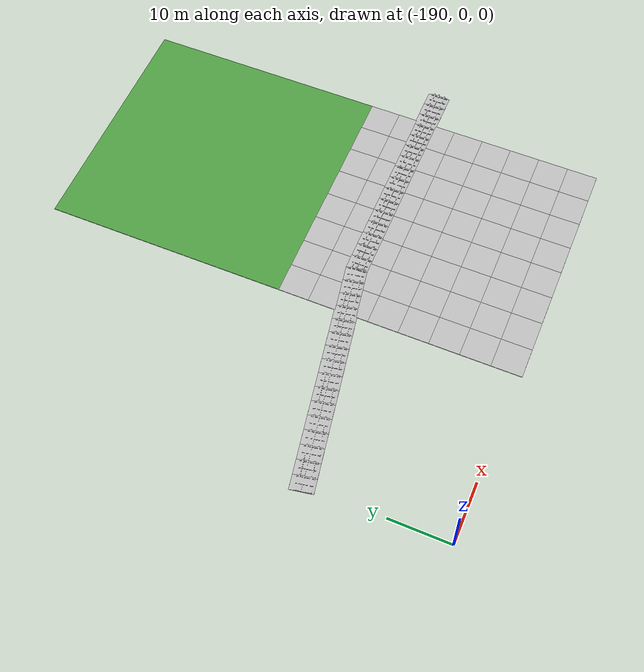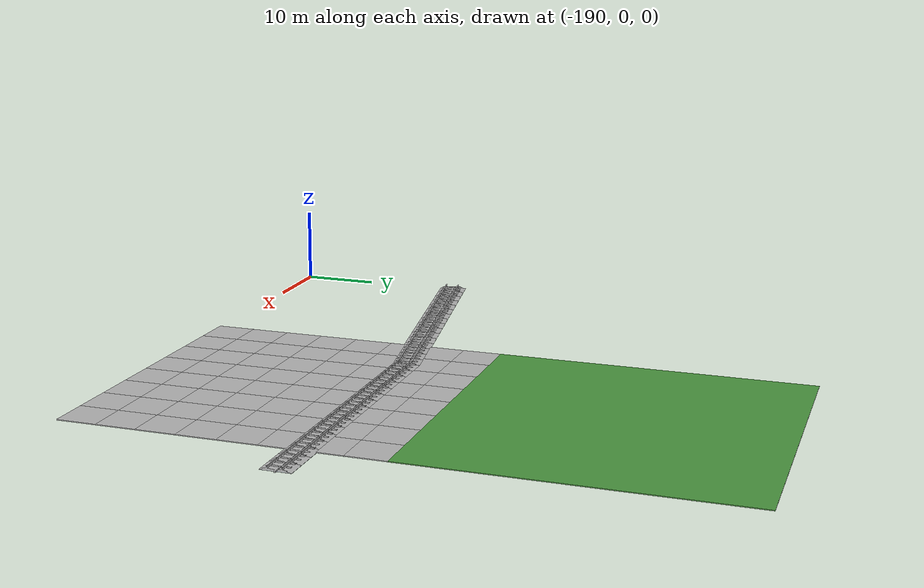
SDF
<sdf version="1.7">
 <world name="default">
  <model name="mud_plane_40x40_3">
   <model name="mud_plane_20x20">
    <model name="mud_plane">
     <static>1</static>
     <link name="link">
      <collision name="collision"><geometry><box><size>10 10 0.1</size></box></geometry></collision>
      <visual name="visual_1">
       <pose>-2.5 2.5 -0.05 0 -0 0</pose>
       <cast_shadows>0</cast_shadows>
       <geometry><box><size>5 5 0.1</size></box></geometry>
       <material>
        <script>
         <uri>model://mud_plane/materials/scripts</uri>
         <uri>model://mud_plane/materials/textures</uri>
         <name>vrc/mud</name>
        </script>
       </material>
      </visual>
      <visual name="visual_2">
       <pose>2.5 2.5 -0.05 0 -0 0</pose>
       <cast_shadows>0</cast_shadows>
       <geometry><box><size>5 5 0.1</size></box></geometry>
       <material>
        <script>
         <uri>model://mud_plane/materials/scripts</uri>
         <uri>model://mud_plane/materials/textures</uri>
         <name>vrc/mud</name>
        </script>
       </material>
      </visual>
      <visual name="visual_3">
       <pose>2.5 -2.5 -0.05 0 -0 0</pose>
       <cast_shadows>0</cast_shadows>
       <geometry><box><size>5 5 0.1</size></box></geometry>
       <material>
        <script>
         <uri>model://mud_plane/materials/scripts</uri>
         <uri>model://mud_plane/materials/textures</uri>
         <name>vrc/mud</name>
        </script>
       </material>
      </visual>
      <visual name="visual_4">
       <pose>-2.5 -2.5 -0.05 0 -0 0</pose>
       <cast_shadows>0</cast_shadows>
       <geometry><box><size>5 5 0.1</size></box></geometry>
       <material>
        <script>
         <uri>model://mud_plane/materials/scripts</uri>
         <uri>model://mud_plane/materials/textures</uri>
         <name>vrc/mud</name>
        </script>
       </material>
      </visual>
     </link>
     <pose>-4.99986 -4.99991 0 0 -0 0</pose>
    </model>
    <model name="mud_plane_0">
     <static>1</static>
     <link name="link">
      <collision name="collision"><geometry><box><size>10 10 0.1</size></box></geometry></collision>
      <visual name="visual_1">
       <pose>-2.5 2.5 -0.05 0 -0 0</pose>
       <cast_shadows>0</cast_shadows>
       <geometry><box><size>5 5 0.1</size></box></geometry>
       <material>
        <script>
         <uri>model://mud_plane/materials/scripts</uri>
         <uri>model://mud_plane/materials/textures</uri>
         <name>vrc/mud</name>
        </script>
       </material>
      </visual>
      <visual name="visual_2">
       <pose>2.5 2.5 -0.05 0 -0 0</pose>
       <cast_shadows>0</cast_shadows>
       <geometry><box><size>5 5 0.1</size></box></geometry>
       <material>
        <script>
         <uri>model://mud_plane/materials/scripts</uri>
         <uri>model://mud_plane/materials/textures</uri>
         <name>vrc/mud</name>
        </script>
       </material>
      </visual>
      <visual name="visual_3">
       <pose>2.5 -2.5 -0.05 0 -0 0</pose>
       <cast_shadows>0</cast_shadows>
       <geometry><box><size>5 5 0.1</size></box></geometry>
       <material>
        <script>
         <uri>model://mud_plane/materials/scripts</uri>
         <uri>model://mud_plane/materials/textures</uri>
         <name>vrc/mud</name>
        </script>
       </material>
      </visual>
      <visual name="visual_4">
       <pose>-2.5 -2.5 -0.05 0 -0 0</pose>
       <cast_shadows>0</cast_shadows>
       <geometry><box><size>5 5 0.1</size></box></geometry>
       <material>
        <script>
         <uri>model://mud_plane/materials/scripts</uri>
         <uri>model://mud_plane/materials/textures</uri>
         <name>vrc/mud</name>
        </script>
       </material>
      </visual>
     </link>
     <pose>-4.99946 4.99954 0 0 -0 0</pose>
    </model>
    <model name="mud_plane_1">
     <static>1</static>
     <link name="link">
      <collision name="collision"><geometry><box><size>10 10 0.1</size></box></geometry></collision>
      <visual name="visual_1">
       <pose>-2.5 2.5 -0.05 0 -0 0</pose>
       <cast_shadows>0</cast_shadows>
       <geometry><box><size>5 5 0.1</size></box></geometry>
       <material>
        <script>
         <uri>model://mud_plane/materials/scripts</uri>
         <uri>model://mud_plane/materials/textures</uri>
         <name>vrc/mud</name>
        </script>
       </material>
      </visual>
      <visual name="visual_2">
       <pose>2.5 2.5 -0.05 0 -0 0</pose>
       <cast_shadows>0</cast_shadows>
       <geometry><box><size>5 5 0.1</size></box></geometry>
       <material>
        <script>
         <uri>model://mud_plane/materials/scripts</uri>
         <uri>model://mud_plane/materials/textures</uri>
         <name>vrc/mud</name>
        </script>
       </material>
      </visual>
      <visual name="visual_3">
       <pose>2.5 -2.5 -0.05 0 -0 0</pose>
       <cast_shadows>0</cast_shadows>
       <geometry><box><size>5 5 0.1</size></box></geometry>
       <material>
        <script>
         <uri>model://mud_plane/materials/scripts</uri>
         <uri>model://mud_plane/materials/textures</uri>
         <name>vrc/mud</name>
        </script>
       </material>
      </visual>
      <visual name="visual_4">
       <pose>-2.5 -2.5 -0.05 0 -0 0</pose>
       <cast_shadows>0</cast_shadows>
       <geometry><box><size>5 5 0.1</size></box></geometry>
       <material>
        <script>
         <uri>model://mud_plane/materials/scripts</uri>
         <uri>model://mud_plane/materials/textures</uri>
         <name>vrc/mud</name>
        </script>
       </material>
      </visual>
     </link>
     <pose>4.99964 -4.99949 0 0 -0 0</pose>
    </model>
    <model name="mud_plane_2">
     <static>1</static>
     <link name="link">
      <collision name="collision"><geometry><box><size>10 10 0.1</size></box></geometry></collision>
      <visual name="visual_1">
       <pose>-2.5 2.5 -0.05 0 -0 0</pose>
       <cast_shadows>0</cast_shadows>
       <geometry><box><size>5 5 0.1</size></box></geometry>
       <material>
        <script>
         <uri>model://mud_plane/materials/scripts</uri>
         <uri>model://mud_plane/materials/textures</uri>
         <name>vrc/mud</name>
        </script>
       </material>
      </visual>
      <visual name="visual_2">
       <pose>2.5 2.5 -0.05 0 -0 0</pose>
       <cast_shadows>0</cast_shadows>
       <geometry><box><size>5 5 0.1</size></box></geometry>
       <material>
        <script>
         <uri>model://mud_plane/materials/scripts</uri>
         <uri>model://mud_plane/materials/textures</uri>
         <name>vrc/mud</name>
        </script>
       </material>
      </visual>
      <visual name="visual_3">
       <pose>2.5 -2.5 -0.05 0 -0 0</pose>
       <cast_shadows>0</cast_shadows>
       <geometry><box><size>5 5 0.1</size></box></geometry>
       <material>
        <script>
         <uri>model://mud_plane/materials/scripts</uri>
         <uri>model://mud_plane/materials/textures</uri>
         <name>vrc/mud</name>
        </script>
       </material>
      </visual>
      <visual name="visual_4">
       <pose>-2.5 -2.5 -0.05 0 -0 0</pose>
       <cast_shadows>0</cast_shadows>
       <geometry><box><size>5 5 0.1</size></box></geometry>
       <material>
        <script>
         <uri>model://mud_plane/materials/scripts</uri>
         <uri>model://mud_plane/materials/textures</uri>
         <name>vrc/mud</name>
        </script>
       </material>
      </visual>
     </link>
     <pose>4.99967 4.99986 0 0 -0 0</pose>
    </model>
    <static>0</static>
    <pose>-9.99895 9.99843 0 0 -0 0</pose>
   </model>
   <model name="mud_plane_20x20_0">
    <model name="mud_plane">
     <static>1</static>
     <link name="link">
      <collision name="collision"><geometry><box><size>10 10 0.1</size></box></geometry></collision>
      <visual name="visual_1">
       <pose>-2.5 2.5 -0.05 0 -0 0</pose>
       <cast_shadows>0</cast_shadows>
       <geometry><box><size>5 5 0.1</size></box></geometry>
       <material>
        <script>
         <uri>model://mud_plane/materials/scripts</uri>
         <uri>model://mud_plane/materials/textures</uri>
         <name>vrc/mud</name>
        </script>
       </material>
      </visual>
      <visual name="visual_2">
       <pose>2.5 2.5 -0.05 0 -0 0</pose>
       <cast_shadows>0</cast_shadows>
       <geometry><box><size>5 5 0.1</size></box></geometry>
       <material>
        <script>
         <uri>model://mud_plane/materials/scripts</uri>
         <uri>model://mud_plane/materials/textures</uri>
         <name>vrc/mud</name>
        </script>
       </material>
      </visual>
      <visual name="visual_3">
       <pose>2.5 -2.5 -0.05 0 -0 0</pose>
       <cast_shadows>0</cast_shadows>
       <geometry><box><size>5 5 0.1</size></box></geometry>
       <material>
        <script>
         <uri>model://mud_plane/materials/scripts</uri>
         <uri>model://mud_plane/materials/textures</uri>
         <name>vrc/mud</name>
        </script>
       </material>
      </visual>
      <visual name="visual_4">
       <pose>-2.5 -2.5 -0.05 0 -0 0</pose>
       <cast_shadows>0</cast_shadows>
       <geometry><box><size>5 5 0.1</size></box></geometry>
       <material>
        <script>
         <uri>model://mud_plane/materials/scripts</uri>
         <uri>model://mud_plane/materials/textures</uri>
         <name>vrc/mud</name>
        </script>
       </material>
      </visual>
     </link>
     <pose>-4.99986 -4.99991 0 0 -0 0</pose>
    </model>
    <model name="mud_plane_0">
     <static>1</static>
     <link name="link">
      <collision name="collision"><geometry><box><size>10 10 0.1</size></box></geometry></collision>
      <visual name="visual_1">
       <pose>-2.5 2.5 -0.05 0 -0 0</pose>
       <cast_shadows>0</cast_shadows>
       <geometry><box><size>5 5 0.1</size></box></geometry>
       <material>
        <script>
         <uri>model://mud_plane/materials/scripts</uri>
         <uri>model://mud_plane/materials/textures</uri>
         <name>vrc/mud</name>
        </script>
       </material>
      </visual>
      <visual name="visual_2">
       <pose>2.5 2.5 -0.05 0 -0 0</pose>
       <cast_shadows>0</cast_shadows>
       <geometry><box><size>5 5 0.1</size></box></geometry>
       <material>
        <script>
         <uri>model://mud_plane/materials/scripts</uri>
         <uri>model://mud_plane/materials/textures</uri>
         <name>vrc/mud</name>
        </script>
       </material>
      </visual>
      <visual name="visual_3">
       <pose>2.5 -2.5 -0.05 0 -0 0</pose>
       <cast_shadows>0</cast_shadows>
       <geometry><box><size>5 5 0.1</size></box></geometry>
       <material>
        <script>
         <uri>model://mud_plane/materials/scripts</uri>
         <uri>model://mud_plane/materials/textures</uri>
         <name>vrc/mud</name>
        </script>
       </material>
      </visual>
      <visual name="visual_4">
       <pose>-2.5 -2.5 -0.05 0 -0 0</pose>
       <cast_shadows>0</cast_shadows>
       <geometry><box><size>5 5 0.1</size></box></geometry>
       <material>
        <script>
         <uri>model://mud_plane/materials/scripts</uri>
         <uri>model://mud_plane/materials/textures</uri>
         <name>vrc/mud</name>
        </script>
       </material>
      </visual>
     </link>
     <pose>-4.99946 4.99954 0 0 -0 0</pose>
    </model>
    <model name="mud_plane_1">
     <static>1</static>
     <link name="link">
      <collision name="collision"><geometry><box><size>10 10 0.1</size></box></geometry></collision>
      <visual name="visual_1">
       <pose>-2.5 2.5 -0.05 0 -0 0</pose>
       <cast_shadows>0</cast_shadows>
       <geometry><box><size>5 5 0.1</size></box></geometry>
       <material>
        <script>
         <uri>model://mud_plane/materials/scripts</uri>
         <uri>model://mud_plane/materials/textures</uri>
         <name>vrc/mud</name>
        </script>
       </material>
      </visual>
      <visual name="visual_2">
       <pose>2.5 2.5 -0.05 0 -0 0</pose>
       <cast_shadows>0</cast_shadows>
       <geometry><box><size>5 5 0.1</size></box></geometry>
       <material>
        <script>
         <uri>model://mud_plane/materials/scripts</uri>
         <uri>model://mud_plane/materials/textures</uri>
         <name>vrc/mud</name>
        </script>
       </material>
      </visual>
      <visual name="visual_3">
       <pose>2.5 -2.5 -0.05 0 -0 0</pose>
       <cast_shadows>0</cast_shadows>
       <geometry><box><size>5 5 0.1</size></box></geometry>
       <material>
        <script>
         <uri>model://mud_plane/materials/scripts</uri>
         <uri>model://mud_plane/materials/textures</uri>
         <name>vrc/mud</name>
        </script>
       </material>
      </visual>
      <visual name="visual_4">
       <pose>-2.5 -2.5 -0.05 0 -0 0</pose>
       <cast_shadows>0</cast_shadows>
       <geometry><box><size>5 5 0.1</size></box></geometry>
       <material>
        <script>
         <uri>model://mud_plane/materials/scripts</uri>
         <uri>model://mud_plane/materials/textures</uri>
         <name>vrc/mud</name>
        </script>
       </material>
      </visual>
     </link>
     <pose>4.99964 -4.99949 0 0 -0 0</pose>
    </model>
    <model name="mud_plane_2">
     <static>1</static>
     <link name="link">
      <collision name="collision"><geometry><box><size>10 10 0.1</size></box></geometry></collision>
      <visual name="visual_1">
       <pose>-2.5 2.5 -0.05 0 -0 0</pose>
       <cast_shadows>0</cast_shadows>
       <geometry><box><size>5 5 0.1</size></box></geometry>
       <material>
        <script>
         <uri>model://mud_plane/materials/scripts</uri>
         <uri>model://mud_plane/materials/textures</uri>
         <name>vrc/mud</name>
        </script>
       </material>
      </visual>
      <visual name="visual_2">
       <pose>2.5 2.5 -0.05 0 -0 0</pose>
       <cast_shadows>0</cast_shadows>
       <geometry><box><size>5 5 0.1</size></box></geometry>
       <material>
        <script>
         <uri>model://mud_plane/materials/scripts</uri>
         <uri>model://mud_plane/materials/textures</uri>
         <name>vrc/mud</name>
        </script>
       </material>
      </visual>
      <visual name="visual_3">
       <pose>2.5 -2.5 -0.05 0 -0 0</pose>
       <cast_shadows>0</cast_shadows>
       <geometry><box><size>5 5 0.1</size></box></geometry>
       <material>
        <script>
         <uri>model://mud_plane/materials/scripts</uri>
         <uri>model://mud_plane/materials/textures</uri>
         <name>vrc/mud</name>
        </script>
       </material>
      </visual>
      <visual name="visual_4">
       <pose>-2.5 -2.5 -0.05 0 -0 0</pose>
       <cast_shadows>0</cast_shadows>
       <geometry><box><size>5 5 0.1</size></box></geometry>
       <material>
        <script>
         <uri>model://mud_plane/materials/scripts</uri>
         <uri>model://mud_plane/materials/textures</uri>
         <name>vrc/mud</name>
        </script>
       </material>
      </visual>
     </link>
     <pose>4.99967 4.99986 0 0 -0 0</pose>
    </model>
    <static>0</static>
    <pose>9.99933 9.9997 0 0 -0 0</pose>
   </model>
   <model name="mud_plane_20x20_1">
    <model name="mud_plane">
     <static>1</static>
     <link name="link">
      <collision name="collision"><geometry><box><size>10 10 0.1</size></box></geometry></collision>
      <visual name="visual_1">
       <pose>-2.5 2.5 -0.05 0 -0 0</pose>
       <cast_shadows>0</cast_shadows>
       <geometry><box><size>5 5 0.1</size></box></geometry>
       <material>
        <script>
         <uri>model://mud_plane/materials/scripts</uri>
         <uri>model://mud_plane/materials/textures</uri>
         <name>vrc/mud</name>
        </script>
       </material>
      </visual>
      <visual name="visual_2">
       <pose>2.5 2.5 -0.05 0 -0 0</pose>
       <cast_shadows>0</cast_shadows>
       <geometry><box><size>5 5 0.1</size></box></geometry>
       <material>
        <script>
         <uri>model://mud_plane/materials/scripts</uri>
         <uri>model://mud_plane/materials/textures</uri>
         <name>vrc/mud</name>
        </script>
       </material>
      </visual>
      <visual name="visual_3">
       <pose>2.5 -2.5 -0.05 0 -0 0</pose>
       <cast_shadows>0</cast_shadows>
       <geometry><box><size>5 5 0.1</size></box></geometry>
       <material>
        <script>
         <uri>model://mud_plane/materials/scripts</uri>
         <uri>model://mud_plane/materials/textures</uri>
         <name>vrc/mud</name>
        </script>
       </material>
      </visual>
      <visual name="visual_4">
       <pose>-2.5 -2.5 -0.05 0 -0 0</pose>
       <cast_shadows>0</cast_shadows>
       <geometry><box><size>5 5 0.1</size></box></geometry>
       <material>
        <script>
         <uri>model://mud_plane/materials/scripts</uri>
         <uri>model://mud_plane/materials/textures</uri>
         <name>vrc/mud</name>
        </script>
       </material>
      </visual>
     </link>
     <pose>-4.99986 -4.99991 0 0 -0 0</pose>
    </model>
    <model name="mud_plane_0">
     <static>1</static>
     <link name="link">
      <collision name="collision"><geometry><box><size>10 10 0.1</size></box></geometry></collision>
      <visual name="visual_1">
       <pose>-2.5 2.5 -0.05 0 -0 0</pose>
       <cast_shadows>0</cast_shadows>
       <geometry><box><size>5 5 0.1</size></box></geometry>
       <material>
        <script>
         <uri>model://mud_plane/materials/scripts</uri>
         <uri>model://mud_plane/materials/textures</uri>
         <name>vrc/mud</name>
        </script>
       </material>
      </visual>
      <visual name="visual_2">
       <pose>2.5 2.5 -0.05 0 -0 0</pose>
       <cast_shadows>0</cast_shadows>
       <geometry><box><size>5 5 0.1</size></box></geometry>
       <material>
        <script>
         <uri>model://mud_plane/materials/scripts</uri>
         <uri>model://mud_plane/materials/textures</uri>
         <name>vrc/mud</name>
        </script>
       </material>
      </visual>
      <visual name="visual_3">
       <pose>2.5 -2.5 -0.05 0 -0 0</pose>
       <cast_shadows>0</cast_shadows>
       <geometry><box><size>5 5 0.1</size></box></geometry>
       <material>
        <script>
         <uri>model://mud_plane/materials/scripts</uri>
         <uri>model://mud_plane/materials/textures</uri>
         <name>vrc/mud</name>
        </script>
       </material>
      </visual>
      <visual name="visual_4">
       <pose>-2.5 -2.5 -0.05 0 -0 0</pose>
       <cast_shadows>0</cast_shadows>
       <geometry><box><size>5 5 0.1</size></box></geometry>
       <material>
        <script>
         <uri>model://mud_plane/materials/scripts</uri>
         <uri>model://mud_plane/materials/textures</uri>
         <name>vrc/mud</name>
        </script>
       </material>
      </visual>
     </link>
     <pose>-4.99946 4.99954 0 0 -0 0</pose>
    </model>
    <model name="mud_plane_1">
     <static>1</static>
     <link name="link">
      <collision name="collision"><geometry><box><size>10 10 0.1</size></box></geometry></collision>
      <visual name="visual_1">
       <pose>-2.5 2.5 -0.05 0 -0 0</pose>
       <cast_shadows>0</cast_shadows>
       <geometry><box><size>5 5 0.1</size></box></geometry>
       <material>
        <script>
         <uri>model://mud_plane/materials/scripts</uri>
         <uri>model://mud_plane/materials/textures</uri>
         <name>vrc/mud</name>
        </script>
       </material>
      </visual>
      <visual name="visual_2">
       <pose>2.5 2.5 -0.05 0 -0 0</pose>
       <cast_shadows>0</cast_shadows>
       <geometry><box><size>5 5 0.1</size></box></geometry>
       <material>
        <script>
         <uri>model://mud_plane/materials/scripts</uri>
         <uri>model://mud_plane/materials/textures</uri>
         <name>vrc/mud</name>
        </script>
       </material>
      </visual>
      <visual name="visual_3">
       <pose>2.5 -2.5 -0.05 0 -0 0</pose>
       <cast_shadows>0</cast_shadows>
       <geometry><box><size>5 5 0.1</size></box></geometry>
       <material>
        <script>
         <uri>model://mud_plane/materials/scripts</uri>
         <uri>model://mud_plane/materials/textures</uri>
         <name>vrc/mud</name>
        </script>
       </material>
      </visual>
      <visual name="visual_4">
       <pose>-2.5 -2.5 -0.05 0 -0 0</pose>
       <cast_shadows>0</cast_shadows>
       <geometry><box><size>5 5 0.1</size></box></geometry>
       <material>
        <script>
         <uri>model://mud_plane/materials/scripts</uri>
         <uri>model://mud_plane/materials/textures</uri>
         <name>vrc/mud</name>
        </script>
       </material>
      </visual>
     </link>
     <pose>4.99964 -4.99949 0 0 -0 0</pose>
    </model>
    <model name="mud_plane_2">
     <static>1</static>
     <link name="link">
      <collision name="collision"><geometry><box><size>10 10 0.1</size></box></geometry></collision>
      <visual name="visual_1">
       <pose>-2.5 2.5 -0.05 0 -0 0</pose>
       <cast_shadows>0</cast_shadows>
       <geometry><box><size>5 5 0.1</size></box></geometry>
       <material>
        <script>
         <uri>model://mud_plane/materials/scripts</uri>
         <uri>model://mud_plane/materials/textures</uri>
         <name>vrc/mud</name>
        </script>
       </material>
      </visual>
      <visual name="visual_2">
       <pose>2.5 2.5 -0.05 0 -0 0</pose>
       <cast_shadows>0</cast_shadows>
       <geometry><box><size>5 5 0.1</size></box></geometry>
       <material>
        <script>
         <uri>model://mud_plane/materials/scripts</uri>
         <uri>model://mud_plane/materials/textures</uri>
         <name>vrc/mud</name>
        </script>
       </material>
      </visual>
      <visual name="visual_3">
       <pose>2.5 -2.5 -0.05 0 -0 0</pose>
       <cast_shadows>0</cast_shadows>
       <geometry><box><size>5 5 0.1</size></box></geometry>
       <material>
        <script>
         <uri>model://mud_plane/materials/scripts</uri>
         <uri>model://mud_plane/materials/textures</uri>
         <name>vrc/mud</name>
        </script>
       </material>
      </visual>
      <visual name="visual_4">
       <pose>-2.5 -2.5 -0.05 0 -0 0</pose>
       <cast_shadows>0</cast_shadows>
       <geometry><box><size>5 5 0.1</size></box></geometry>
       <material>
        <script>
         <uri>model://mud_plane/materials/scripts</uri>
         <uri>model://mud_plane/materials/textures</uri>
         <name>vrc/mud</name>
        </script>
       </material>
      </visual>
     </link>
     <pose>4.99967 4.99986 0 0 -0 0</pose>
    </model>
    <static>0</static>
    <pose>9.9993 -9.99877 0 0 -0 0</pose>
   </model>
   <model name="mud_plane_20x20_2">
    <model name="mud_plane">
     <static>1</static>
     <link name="link">
      <collision name="collision"><geometry><box><size>10 10 0.1</size></box></geometry></collision>
      <visual name="visual_1">
       <pose>-2.5 2.5 -0.05 0 -0 0</pose>
       <cast_shadows>0</cast_shadows>
       <geometry><box><size>5 5 0.1</size></box></geometry>
       <material>
        <script>
         <uri>model://mud_plane/materials/scripts</uri>
         <uri>model://mud_plane/materials/textures</uri>
         <name>vrc/mud</name>
        </script>
       </material>
      </visual>
      <visual name="visual_2">
       <pose>2.5 2.5 -0.05 0 -0 0</pose>
       <cast_shadows>0</cast_shadows>
       <geometry><box><size>5 5 0.1</size></box></geometry>
       <material>
        <script>
         <uri>model://mud_plane/materials/scripts</uri>
         <uri>model://mud_plane/materials/textures</uri>
         <name>vrc/mud</name>
        </script>
       </material>
      </visual>
      <visual name="visual_3">
       <pose>2.5 -2.5 -0.05 0 -0 0</pose>
       <cast_shadows>0</cast_shadows>
       <geometry><box><size>5 5 0.1</size></box></geometry>
       <material>
        <script>
         <uri>model://mud_plane/materials/scripts</uri>
         <uri>model://mud_plane/materials/textures</uri>
         <name>vrc/mud</name>
        </script>
       </material>
      </visual>
      <visual name="visual_4">
       <pose>-2.5 -2.5 -0.05 0 -0 0</pose>
       <cast_shadows>0</cast_shadows>
       <geometry><box><size>5 5 0.1</size></box></geometry>
       <material>
        <script>
         <uri>model://mud_plane/materials/scripts</uri>
         <uri>model://mud_plane/materials/textures</uri>
         <name>vrc/mud</name>
        </script>
       </material>
      </visual>
     </link>
     <pose>-4.99986 -4.99991 0 0 -0 0</pose>
    </model>
    <model name="mud_plane_0">
     <static>1</static>
     <link name="link">
      <collision name="collision"><geometry><box><size>10 10 0.1</size></box></geometry></collision>
      <visual name="visual_1">
       <pose>-2.5 2.5 -0.05 0 -0 0</pose>
       <cast_shadows>0</cast_shadows>
       <geometry><box><size>5 5 0.1</size></box></geometry>
       <material>
        <script>
         <uri>model://mud_plane/materials/scripts</uri>
         <uri>model://mud_plane/materials/textures</uri>
         <name>vrc/mud</name>
        </script>
       </material>
      </visual>
      <visual name="visual_2">
       <pose>2.5 2.5 -0.05 0 -0 0</pose>
       <cast_shadows>0</cast_shadows>
       <geometry><box><size>5 5 0.1</size></box></geometry>
       <material>
        <script>
         <uri>model://mud_plane/materials/scripts</uri>
         <uri>model://mud_plane/materials/textures</uri>
         <name>vrc/mud</name>
        </script>
       </material>
      </visual>
      <visual name="visual_3">
       <pose>2.5 -2.5 -0.05 0 -0 0</pose>
       <cast_shadows>0</cast_shadows>
       <geometry><box><size>5 5 0.1</size></box></geometry>
       <material>
        <script>
         <uri>model://mud_plane/materials/scripts</uri>
         <uri>model://mud_plane/materials/textures</uri>
         <name>vrc/mud</name>
        </script>
       </material>
      </visual>
      <visual name="visual_4">
       <pose>-2.5 -2.5 -0.05 0 -0 0</pose>
       <cast_shadows>0</cast_shadows>
       <geometry><box><size>5 5 0.1</size></box></geometry>
       <material>
        <script>
         <uri>model://mud_plane/materials/scripts</uri>
         <uri>model://mud_plane/materials/textures</uri>
         <name>vrc/mud</name>
        </script>
       </material>
      </visual>
     </link>
     <pose>-4.99946 4.99954 0 0 -0 0</pose>
    </model>
    <model name="mud_plane_1">
     <static>1</static>
     <link name="link">
      <collision name="collision"><geometry><box><size>10 10 0.1</size></box></geometry></collision>
      <visual name="visual_1">
       <pose>-2.5 2.5 -0.05 0 -0 0</pose>
       <cast_shadows>0</cast_shadows>
       <geometry><box><size>5 5 0.1</size></box></geometry>
       <material>
        <script>
         <uri>model://mud_plane/materials/scripts</uri>
         <uri>model://mud_plane/materials/textures</uri>
         <name>vrc/mud</name>
        </script>
       </material>
      </visual>
      <visual name="visual_2">
       <pose>2.5 2.5 -0.05 0 -0 0</pose>
       <cast_shadows>0</cast_shadows>
       <geometry><box><size>5 5 0.1</size></box></geometry>
       <material>
        <script>
         <uri>model://mud_plane/materials/scripts</uri>
         <uri>model://mud_plane/materials/textures</uri>
         <name>vrc/mud</name>
        </script>
       </material>
      </visual>
      <visual name="visual_3">
       <pose>2.5 -2.5 -0.05 0 -0 0</pose>
       <cast_shadows>0</cast_shadows>
       <geometry><box><size>5 5 0.1</size></box></geometry>
       <material>
        <script>
         <uri>model://mud_plane/materials/scripts</uri>
         <uri>model://mud_plane/materials/textures</uri>
         <name>vrc/mud</name>
        </script>
       </material>
      </visual>
      <visual name="visual_4">
       <pose>-2.5 -2.5 -0.05 0 -0 0</pose>
       <cast_shadows>0</cast_shadows>
       <geometry><box><size>5 5 0.1</size></box></geometry>
       <material>
        <script>
         <uri>model://mud_plane/materials/scripts</uri>
         <uri>model://mud_plane/materials/textures</uri>
         <name>vrc/mud</name>
        </script>
       </material>
      </visual>
     </link>
     <pose>4.99964 -4.99949 0 0 -0 0</pose>
    </model>
    <model name="mud_plane_2">
     <static>1</static>
     <link name="link">
      <collision name="collision"><geometry><box><size>10 10 0.1</size></box></geometry></collision>
      <visual name="visual_1">
       <pose>-2.5 2.5 -0.05 0 -0 0</pose>
       <cast_shadows>0</cast_shadows>
       <geometry><box><size>5 5 0.1</size></box></geometry>
       <material>
        <script>
         <uri>model://mud_plane/materials/scripts</uri>
         <uri>model://mud_plane/materials/textures</uri>
         <name>vrc/mud</name>
        </script>
       </material>
      </visual>
      <visual name="visual_2">
       <pose>2.5 2.5 -0.05 0 -0 0</pose>
       <cast_shadows>0</cast_shadows>
       <geometry><box><size>5 5 0.1</size></box></geometry>
       <material>
        <script>
         <uri>model://mud_plane/materials/scripts</uri>
         <uri>model://mud_plane/materials/textures</uri>
         <name>vrc/mud</name>
        </script>
       </material>
      </visual>
      <visual name="visual_3">
       <pose>2.5 -2.5 -0.05 0 -0 0</pose>
       <cast_shadows>0</cast_shadows>
       <geometry><box><size>5 5 0.1</size></box></geometry>
       <material>
        <script>
         <uri>model://mud_plane/materials/scripts</uri>
         <uri>model://mud_plane/materials/textures</uri>
         <name>vrc/mud</name>
        </script>
       </material>
      </visual>
      <visual name="visual_4">
       <pose>-2.5 -2.5 -0.05 0 -0 0</pose>
       <cast_shadows>0</cast_shadows>
       <geometry><box><size>5 5 0.1</size></box></geometry>
       <material>
        <script>
         <uri>model://mud_plane/materials/scripts</uri>
         <uri>model://mud_plane/materials/textures</uri>
         <name>vrc/mud</name>
        </script>
       </material>
      </visual>
     </link>
     <pose>4.99967 4.99986 0 0 -0 0</pose>
    </model>
    <static>0</static>
    <pose>-9.99969 -9.99935 0 0 -0 0</pose>
   </model>
   <static>0</static>
   <pose>-141.425 19.2456 0 0 -0 0</pose>
  </model>
  <model name="railway16_2">
   <model name="railway8">
    <model name="railway4">
     <model name="railway2">
      <model name="railway">
       <static>1</static>
       <link name="link">
        <visual name="visual"><geometry><mesh><uri>model://railway/meshes/model.dae</uri></mesh></geometry></visual>
       </link>
       <pose>1.19969 -6.9e-05 0 0 -0 0</pose>
      </model>
      <model name="railway_0">
       <static>1</static>
       <link name="link">
        <visual name="visual"><geometry><mesh><uri>model://railway/meshes/model.dae</uri></mesh></geometry></visual>
       </link>
       <pose>-1.1997 6.9e-05 0 0 -0 0</pose>
      </model>
      <static>0</static>
      <pose>-2.39934 4.6e-05 0 0 -0 0</pose>
     </model>
     <model name="railway2_0">
      <model name="railway">
       <static>1</static>
       <link name="link">
        <visual name="visual"><geometry><mesh><uri>model://railway/meshes/model.dae</uri></mesh></geometry></visual>
       </link>
       <pose>1.19969 -6.9e-05 0 0 -0 0</pose>
      </model>
      <model name="railway_0">
       <static>1</static>
       <link name="link">
        <visual name="visual"><geometry><mesh><uri>model://railway/meshes/model.dae</uri></mesh></geometry></visual>
       </link>
       <pose>-1.1997 6.9e-05 0 0 -0 0</pose>
      </model>
      <static>0</static>
      <pose>2.39934 -5.4e-05 0 0 -0 0</pose>
     </model>
     <static>0</static>
     <pose>4.79871 -0.000105 0 0 -0 0</pose>
    </model>
    <model name="railway4_0">
     <model name="railway2">
      <model name="railway">
       <static>1</static>
       <link name="link">
        <visual name="visual"><geometry><mesh><uri>model://railway/meshes/model.dae</uri></mesh></geometry></visual>
       </link>
       <pose>1.19969 -6.9e-05 0 0 -0 0</pose>
      </model>
      <model name="railway_0">
       <static>1</static>
       <link name="link">
        <visual name="visual"><geometry><mesh><uri>model://railway/meshes/model.dae</uri></mesh></geometry></visual>
       </link>
       <pose>-1.1997 6.9e-05 0 0 -0 0</pose>
      </model>
      <static>0</static>
      <pose>-2.39934 4.6e-05 0 0 -0 0</pose>
     </model>
     <model name="railway2_0">
      <model name="railway">
       <static>1</static>
       <link name="link">
        <visual name="visual"><geometry><mesh><uri>model://railway/meshes/model.dae</uri></mesh></geometry></visual>
       </link>
       <pose>1.19969 -6.9e-05 0 0 -0 0</pose>
      </model>
      <model name="railway_0">
       <static>1</static>
       <link name="link">
        <visual name="visual"><geometry><mesh><uri>model://railway/meshes/model.dae</uri></mesh></geometry></visual>
       </link>
       <pose>-1.1997 6.9e-05 0 0 -0 0</pose>
      </model>
      <static>0</static>
      <pose>2.39934 -5.4e-05 0 0 -0 0</pose>
     </model>
     <static>0</static>
     <pose>-4.79871 9.6e-05 0 0 -0 0</pose>
    </model>
    <static>0</static>
    <pose>9.5973 -0.000147 0 0 -0 0</pose>
   </model>
   <model name="railway8_0">
    <model name="railway4">
     <model name="railway2">
      <model name="railway">
       <static>1</static>
       <link name="link">
        <visual name="visual"><geometry><mesh><uri>model://railway/meshes/model.dae</uri></mesh></geometry></visual>
       </link>
       <pose>1.19969 -6.9e-05 0 0 -0 0</pose>
      </model>
      <model name="railway_0">
       <static>1</static>
       <link name="link">
        <visual name="visual"><geometry><mesh><uri>model://railway/meshes/model.dae</uri></mesh></geometry></visual>
       </link>
       <pose>-1.1997 6.9e-05 0 0 -0 0</pose>
      </model>
      <static>0</static>
      <pose>-2.39934 4.6e-05 0 0 -0 0</pose>
     </model>
     <model name="railway2_0">
      <model name="railway">
       <static>1</static>
       <link name="link">
        <visual name="visual"><geometry><mesh><uri>model://railway/meshes/model.dae</uri></mesh></geometry></visual>
       </link>
       <pose>1.19969 -6.9e-05 0 0 -0 0</pose>
      </model>
      <model name="railway_0">
       <static>1</static>
       <link name="link">
        <visual name="visual"><geometry><mesh><uri>model://railway/meshes/model.dae</uri></mesh></geometry></visual>
       </link>
       <pose>-1.1997 6.9e-05 0 0 -0 0</pose>
      </model>
      <static>0</static>
      <pose>2.39934 -5.4e-05 0 0 -0 0</pose>
     </model>
     <static>0</static>
     <pose>4.79871 -0.000105 0 0 -0 0</pose>
    </model>
    <model name="railway4_0">
     <model name="railway2">
      <model name="railway">
       <static>1</static>
       <link name="link">
        <visual name="visual"><geometry><mesh><uri>model://railway/meshes/model.dae</uri></mesh></geometry></visual>
       </link>
       <pose>1.19969 -6.9e-05 0 0 -0 0</pose>
      </model>
      <model name="railway_0">
       <static>1</static>
       <link name="link">
        <visual name="visual"><geometry><mesh><uri>model://railway/meshes/model.dae</uri></mesh></geometry></visual>
       </link>
       <pose>-1.1997 6.9e-05 0 0 -0 0</pose>
      </model>
      <static>0</static>
      <pose>-2.39934 4.6e-05 0 0 -0 0</pose>
     </model>
     <model name="railway2_0">
      <model name="railway">
       <static>1</static>
       <link name="link">
        <visual name="visual"><geometry><mesh><uri>model://railway/meshes/model.dae</uri></mesh></geometry></visual>
       </link>
       <pose>1.19969 -6.9e-05 0 0 -0 0</pose>
      </model>
      <model name="railway_0">
       <static>1</static>
       <link name="link">
        <visual name="visual"><geometry><mesh><uri>model://railway/meshes/model.dae</uri></mesh></geometry></visual>
       </link>
       <pose>-1.1997 6.9e-05 0 0 -0 0</pose>
      </model>
      <static>0</static>
      <pose>2.39934 -5.4e-05 0 0 -0 0</pose>
     </model>
     <static>0</static>
     <pose>-4.79871 9.6e-05 0 0 -0 0</pose>
    </model>
    <static>0</static>
    <pose>-9.59731 0.000145 0 0 -0 0</pose>
   </model>
   <static>0</static>
   <pose>-135.424 29.344 0 0 -0 0</pose>
  </model>
  <model name="railway16_3">
   <model name="railway8">
    <model name="railway4">
     <model name="railway2">
      <model name="railway">
       <static>1</static>
       <link name="link">
        <visual name="visual"><geometry><mesh><uri>model://railway/meshes/model.dae</uri></mesh></geometry></visual>
       </link>
       <pose>1.19969 -6.9e-05 0 0 -0 0</pose>
      </model>
      <model name="railway_0">
       <static>1</static>
       <link name="link">
        <visual name="visual"><geometry><mesh><uri>model://railway/meshes/model.dae</uri></mesh></geometry></visual>
       </link>
       <pose>-1.1997 6.9e-05 0 0 -0 0</pose>
      </model>
      <static>0</static>
      <pose>-2.39934 4.6e-05 0 0 -0 0</pose>
     </model>
     <model name="railway2_0">
      <model name="railway">
       <static>1</static>
       <link name="link">
        <visual name="visual"><geometry><mesh><uri>model://railway/meshes/model.dae</uri></mesh></geometry></visual>
       </link>
       <pose>1.19969 -6.9e-05 0 0 -0 0</pose>
      </model>
      <model name="railway_0">
       <static>1</static>
       <link name="link">
        <visual name="visual"><geometry><mesh><uri>model://railway/meshes/model.dae</uri></mesh></geometry></visual>
       </link>
       <pose>-1.1997 6.9e-05 0 0 -0 0</pose>
      </model>
      <static>0</static>
      <pose>2.39934 -5.4e-05 0 0 -0 0</pose>
     </model>
     <static>0</static>
     <pose>4.79871 -0.000105 0 0 -0 0</pose>
    </model>
    <model name="railway4_0">
     <model name="railway2">
      <model name="railway">
       <static>1</static>
       <link name="link">
        <visual name="visual"><geometry><mesh><uri>model://railway/meshes/model.dae</uri></mesh></geometry></visual>
       </link>
       <pose>1.19969 -6.9e-05 0 0 -0 0</pose>
      </model>
      <model name="railway_0">
       <static>1</static>
       <link name="link">
        <visual name="visual"><geometry><mesh><uri>model://railway/meshes/model.dae</uri></mesh></geometry></visual>
       </link>
       <pose>-1.1997 6.9e-05 0 0 -0 0</pose>
      </model>
      <static>0</static>
      <pose>-2.39934 4.6e-05 0 0 -0 0</pose>
     </model>
     <model name="railway2_0">
      <model name="railway">
       <static>1</static>
       <link name="link">
        <visual name="visual"><geometry><mesh><uri>model://railway/meshes/model.dae</uri></mesh></geometry></visual>
       </link>
       <pose>1.19969 -6.9e-05 0 0 -0 0</pose>
      </model>
      <model name="railway_0">
       <static>1</static>
       <link name="link">
        <visual name="visual"><geometry><mesh><uri>model://railway/meshes/model.dae</uri></mesh></geometry></visual>
       </link>
       <pose>-1.1997 6.9e-05 0 0 -0 0</pose>
      </model>
      <static>0</static>
      <pose>2.39934 -5.4e-05 0 0 -0 0</pose>
     </model>
     <static>0</static>
     <pose>-4.79871 9.6e-05 0 0 -0 0</pose>
    </model>
    <static>0</static>
    <pose>9.5973 -0.000147 0 0 -0 0</pose>
   </model>
   <model name="railway8_0">
    <model name="railway4">
     <model name="railway2">
      <model name="railway">
       <static>1</static>
       <link name="link">
        <visual name="visual"><geometry><mesh><uri>model://railway/meshes/model.dae</uri></mesh></geometry></visual>
       </link>
       <pose>1.19969 -6.9e-05 0 0 -0 0</pose>
      </model>
      <model name="railway_0">
       <static>1</static>
       <link name="link">
        <visual name="visual"><geometry><mesh><uri>model://railway/meshes/model.dae</uri></mesh></geometry></visual>
       </link>
       <pose>-1.1997 6.9e-05 0 0 -0 0</pose>
      </model>
      <static>0</static>
      <pose>-2.39934 4.6e-05 0 0 -0 0</pose>
     </model>
     <model name="railway2_0">
      <model name="railway">
       <static>1</static>
       <link name="link">
        <visual name="visual"><geometry><mesh><uri>model://railway/meshes/model.dae</uri></mesh></geometry></visual>
       </link>
       <pose>1.19969 -6.9e-05 0 0 -0 0</pose>
      </model>
      <model name="railway_0">
       <static>1</static>
       <link name="link">
        <visual name="visual"><geometry><mesh><uri>model://railway/meshes/model.dae</uri></mesh></geometry></visual>
       </link>
       <pose>-1.1997 6.9e-05 0 0 -0 0</pose>
      </model>
      <static>0</static>
      <pose>2.39934 -5.4e-05 0 0 -0 0</pose>
     </model>
     <static>0</static>
     <pose>4.79871 -0.000105 0 0 -0 0</pose>
    </model>
    <model name="railway4_0">
     <model name="railway2">
      <model name="railway">
       <static>1</static>
       <link name="link">
        <visual name="visual"><geometry><mesh><uri>model://railway/meshes/model.dae</uri></mesh></geometry></visual>
       </link>
       <pose>1.19969 -6.9e-05 0 0 -0 0</pose>
      </model>
      <model name="railway_0">
       <static>1</static>
       <link name="link">
        <visual name="visual"><geometry><mesh><uri>model://railway/meshes/model.dae</uri></mesh></geometry></visual>
       </link>
       <pose>-1.1997 6.9e-05 0 0 -0 0</pose>
      </model>
      <static>0</static>
      <pose>-2.39934 4.6e-05 0 0 -0 0</pose>
     </model>
     <model name="railway2_0">
      <model name="railway">
       <static>1</static>
       <link name="link">
        <visual name="visual"><geometry><mesh><uri>model://railway/meshes/model.dae</uri></mesh></geometry></visual>
       </link>
       <pose>1.19969 -6.9e-05 0 0 -0 0</pose>
      </model>
      <model name="railway_0">
       <static>1</static>
       <link name="link">
        <visual name="visual"><geometry><mesh><uri>model://railway/meshes/model.dae</uri></mesh></geometry></visual>
       </link>
       <pose>-1.1997 6.9e-05 0 0 -0 0</pose>
      </model>
      <static>0</static>
      <pose>2.39934 -5.4e-05 0 0 -0 0</pose>
     </model>
     <static>0</static>
     <pose>-4.79871 9.6e-05 0 0 -0 0</pose>
    </model>
    <static>0</static>
    <pose>-9.59731 0.000145 0 0 -0 0</pose>
   </model>
   <static>0</static>
   <pose>-173.289 25.8125 0 0 -0 0.175</pose>
  </model>
  <model name="grass_plane_40x40_5">
   <pose>-141.425 59.2408 -0.05 0 -0 0</pose>
   <static>1</static>
   <link name="link">
    <collision name="collision"><geometry><box><size>40 40 0.1</size></box></geometry></collision>
    <visual name="grass">
     <cast_shadows>0</cast_shadows>
     <geometry><box><size>40 40 0.1</size></box></geometry>
     <material>
      <script><uri>file://media/materials/scripts/gazebo.material</uri><name>Gazebo/Grass</name></script>
     </material>
    </visual>
   </link>
  </model>
 </world>
</sdf>
